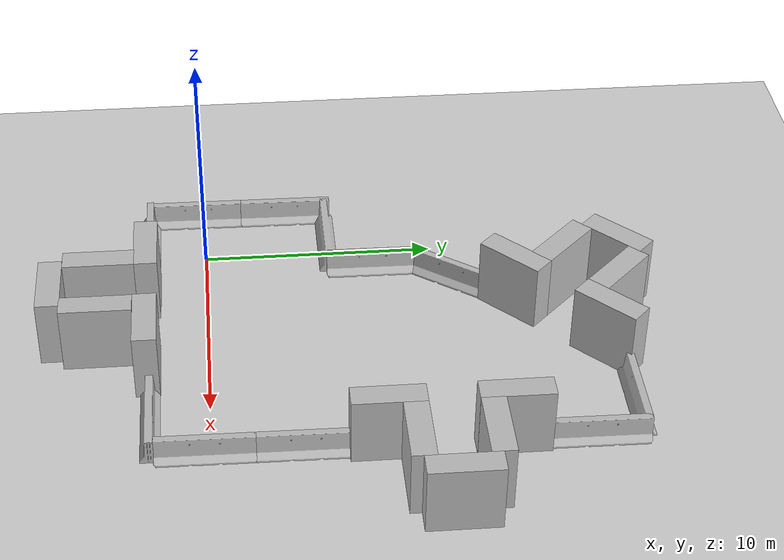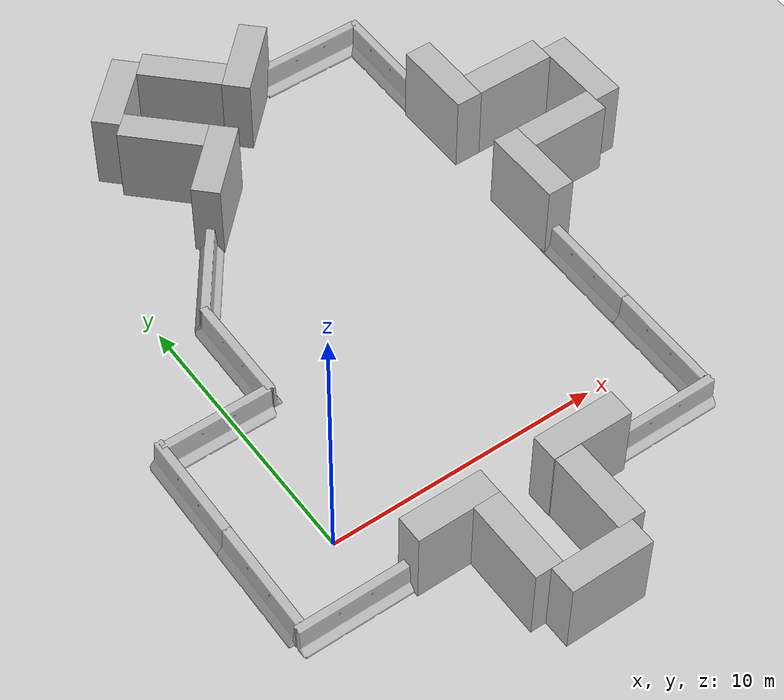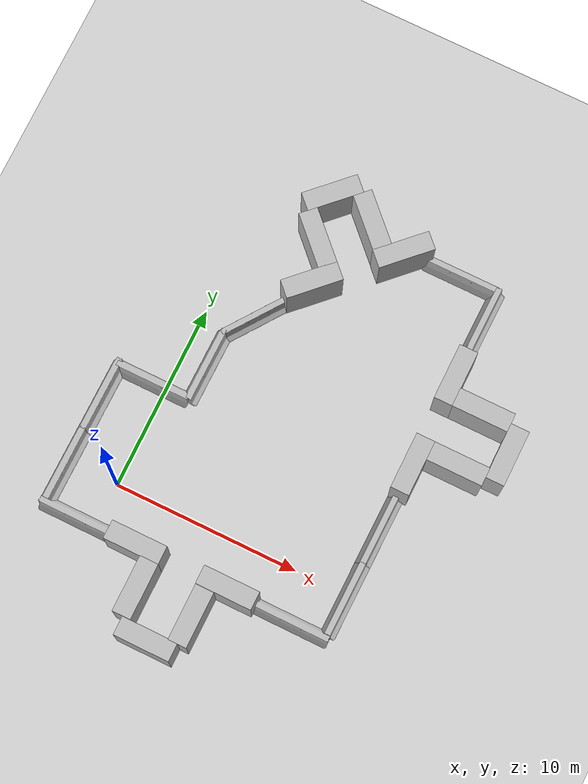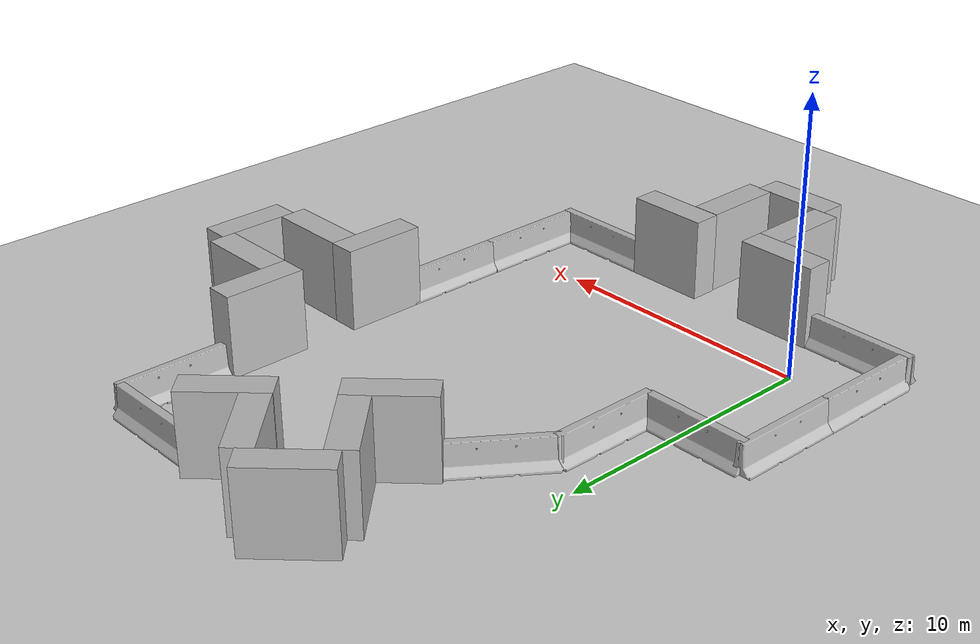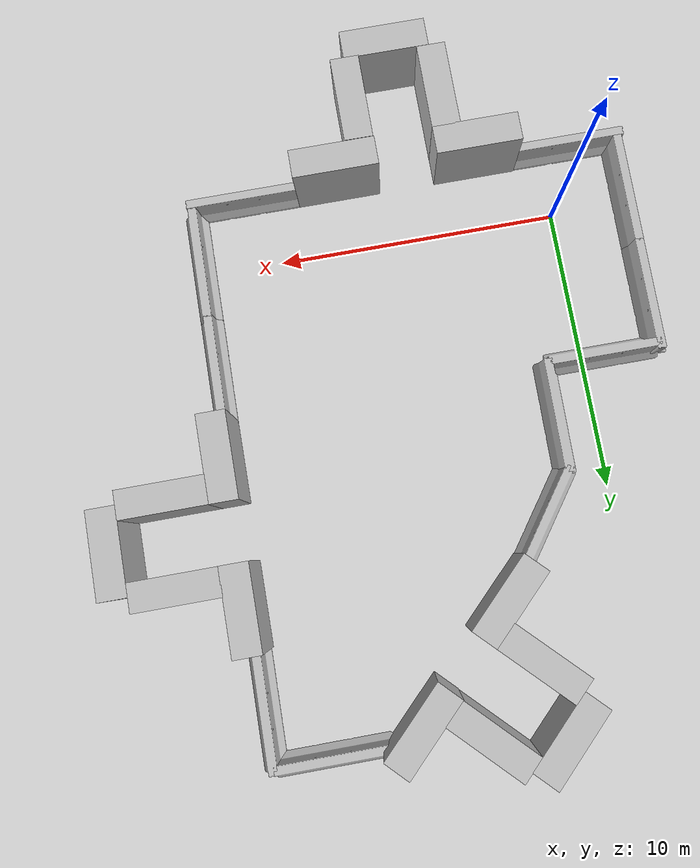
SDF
<sdf version="1.7">
 <world name="default">
  <light name="sun" type="directional">
   <pose>0 0 10 0 -0 0</pose>
   <diffuse>0.8 0.8 0.8 1</diffuse>
   <specular>0.2 0.2 0.2 1</specular>
   <attenuation>
    <range>1000</range>
    <constant>0.9</constant>
    <linear>0.01</linear>
    <quadratic>0.001</quadratic>
   </attenuation>
   <direction>-0.5 0.1 -0.9</direction>
   <spot><inner_angle>0</inner_angle><outer_angle>0</outer_angle><falloff>0</falloff></spot>
  </light>
  <model name="ground_plane">
   <static>1</static>
   <link name="link">
    <collision name="collision">
     <geometry><plane><normal>0 0 1</normal><size>100 100</size></plane></geometry>
     <surface>
      <contact><collide_bitmask>65535</collide_bitmask></contact>
      <friction><ode><mu>100</mu><mu2>50</mu2></ode></friction>
     </surface>
    </collision>
    <visual name="visual">
     <cast_shadows>0</cast_shadows>
     <geometry><plane><normal>0 0 1</normal><size>100 100</size></plane></geometry>
     <material>
      <script><uri>file://media/materials/scripts/gazebo.material</uri><name>Gazebo/Grey</name></script>
     </material>
    </visual>
   </link>
  </model>
  <gravity>0 0 -9.8</gravity>
  <magnetic_field>6e-06 2.3e-05 -4.2e-05</magnetic_field>
  <atmosphere type="adiabatic"/>
  <physics type="ode">
   <max_step_size>0.001</max_step_size>
   <real_time_factor>1</real_time_factor>
   <real_time_update_rate>1000</real_time_update_rate>
  </physics>
  <scene><ambient>0.4 0.4 0.4 1</ambient><background>0.7 0.7 0.7 1</background><shadows>1</shadows></scene>
  <spherical_coordinates>
   <surface_model>EARTH_WGS84</surface_model>
   <latitude_deg>0</latitude_deg>
   <longitude_deg>0</longitude_deg>
   <elevation>0</elevation>
   <heading_deg>0</heading_deg>
  </spherical_coordinates>
  <model name="brick_box_3x1x3">
   <static>1</static>
   <link name="chassis">
    <pose>0 0 1.5 0 -0 0</pose>
    <collision name="collision"><geometry><box><size>3 1 3</size></box></geometry></collision>
    <visual name="visual">
     <geometry><mesh><uri>model://brick_box_3x1x3/meshes/simple_box.dae</uri><scale>3 1 3</scale></mesh></geometry>
     <material>
      <script>
       <uri>model://brick_box_3x1x3/materials/scripts</uri>
       <uri>model://brick_box_3x1x3/materials/textures</uri>
       <name>BrickBox/Diffuse</name>
      </script>
     </material>
    </visual>
   </link>
   <pose>2.50107 -2.51049 0 0 -0 0</pose>
  </model>
  <model name="brick_box_3x1x3_clone">
   <static>1</static>
   <link name="chassis">
    <pose>0 0 1.5 0 -0 0</pose>
    <collision name="collision"><geometry><box><size>3 1 3</size></box></geometry></collision>
    <visual name="visual">
     <geometry><mesh><uri>model://brick_box_3x1x3/meshes/simple_box.dae</uri><scale>3 1 3</scale></mesh></geometry>
     <material>
      <script>
       <uri>model://brick_box_3x1x3/materials/scripts</uri>
       <uri>model://brick_box_3x1x3/materials/textures</uri>
       <name>BrickBox/Diffuse</name>
      </script>
     </material>
    </visual>
   </link>
   <pose>7.52358 -2.5153 0 0 -0 0</pose>
  </model>
  <model name="brick_box_3x1x3_clone_clone">
   <static>1</static>
   <link name="chassis">
    <pose>0 0 1.5 0 -0 0</pose>
    <collision name="collision"><geometry><box><size>3 1 3</size></box></geometry></collision>
    <visual name="visual">
     <geometry><mesh><uri>model://brick_box_3x1x3/meshes/simple_box.dae</uri><scale>3 1 3</scale></mesh></geometry>
     <material>
      <script>
       <uri>model://brick_box_3x1x3/materials/scripts</uri>
       <uri>model://brick_box_3x1x3/materials/textures</uri>
       <name>BrickBox/Diffuse</name>
      </script>
     </material>
    </visual>
   </link>
   <pose>6.55004 -4.52877 0 0 -0 1.57045</pose>
  </model>
  <model name="brick_box_3x1x3_clone_clone_clone">
   <static>1</static>
   <link name="chassis">
    <pose>0 0 1.5 0 -0 0</pose>
    <collision name="collision"><geometry><box><size>3 1 3</size></box></geometry></collision>
    <visual name="visual">
     <geometry><mesh><uri>model://brick_box_3x1x3/meshes/simple_box.dae</uri><scale>3 1 3</scale></mesh></geometry>
     <material>
      <script>
       <uri>model://brick_box_3x1x3/materials/scripts</uri>
       <uri>model://brick_box_3x1x3/materials/textures</uri>
       <name>BrickBox/Diffuse</name>
      </script>
     </material>
    </visual>
   </link>
   <pose>3.50386 -4.48511 0 0 -0 1.57045</pose>
  </model>
  <model name="brick_box_3x1x3_clone_0">
   <static>1</static>
   <link name="chassis">
    <pose>0 0 1.5 0 -0 0</pose>
    <collision name="collision"><geometry><box><size>3 1 3</size></box></geometry></collision>
    <visual name="visual">
     <geometry><mesh><uri>model://brick_box_3x1x3/meshes/simple_box.dae</uri><scale>3 1 3</scale></mesh></geometry>
     <material>
      <script>
       <uri>model://brick_box_3x1x3/materials/scripts</uri>
       <uri>model://brick_box_3x1x3/materials/textures</uri>
       <name>BrickBox/Diffuse</name>
      </script>
     </material>
    </visual>
   </link>
   <pose>5.07076 -6.4907 0 0 -0 0</pose>
  </model>
  <model name="jersey_barrier">
   <static>1</static>
   <link name="link">
    <visual name="visual">
     <geometry><mesh><uri>model://jersey_barrier/meshes/jersey_barrier.dae</uri></mesh></geometry>
    </visual>
    <collision name="upright">
     <pose>0 0 0.5715 0 -0 0</pose>
     <geometry><box><size>4.06542 0.3063 1.143</size></box></geometry>
    </collision>
    <collision name="base">
     <pose>0 0 0.032258 0 -0 0</pose>
     <geometry><box><size>4.06542 0.8107 0.064516</size></box></geometry>
    </collision>
    <collision name="base2">
     <pose>0 0 0.1 0 -0 0</pose>
     <geometry><box><size>4.06542 0.65 0.1</size></box></geometry>
    </collision>
    <collision name="base3">
     <pose>0 0 0.2 0 -0 0</pose>
     <geometry><box><size>4.06542 0.5 0.1</size></box></geometry>
    </collision>
    <collision name="left-angle">
     <pose>0 -0.224 0.2401 0.9 -0 0</pose>
     <geometry><box><size>4.06542 0.5 0.064516</size></box></geometry>
    </collision>
    <collision name="right-angle">
     <pose>0 0.224 0.2401 -0.9 0 0</pose>
     <geometry><box><size>4.06542 0.5 0.064516</size></box></geometry>
    </collision>
   </link>
   <pose>-0.981621 -2.44154 0 0 -0 0</pose>
  </model>
  <model name="jersey_barrier_clone">
   <static>1</static>
   <link name="link">
    <visual name="visual">
     <geometry><mesh><uri>model://jersey_barrier/meshes/jersey_barrier.dae</uri></mesh></geometry>
    </visual>
    <collision name="upright">
     <pose>0 0 0.5715 0 -0 0</pose>
     <geometry><box><size>4.06542 0.3063 1.143</size></box></geometry>
    </collision>
    <collision name="base">
     <pose>0 0 0.032258 0 -0 0</pose>
     <geometry><box><size>4.06542 0.8107 0.064516</size></box></geometry>
    </collision>
    <collision name="base2">
     <pose>0 0 0.1 0 -0 0</pose>
     <geometry><box><size>4.06542 0.65 0.1</size></box></geometry>
    </collision>
    <collision name="base3">
     <pose>0 0 0.2 0 -0 0</pose>
     <geometry><box><size>4.06542 0.5 0.1</size></box></geometry>
    </collision>
    <collision name="left-angle">
     <pose>0 -0.224 0.2401 0.9 -0 0</pose>
     <geometry><box><size>4.06542 0.5 0.064516</size></box></geometry>
    </collision>
    <collision name="right-angle">
     <pose>0 0.224 0.2401 -0.9 0 0</pose>
     <geometry><box><size>4.06542 0.5 0.064516</size></box></geometry>
    </collision>
   </link>
   <pose>10.9697 -2.42292 0 0 -0 0</pose>
  </model>
  <model name="jersey_barrier_clone_0">
   <static>1</static>
   <link name="link">
    <visual name="visual">
     <geometry><mesh><uri>model://jersey_barrier/meshes/jersey_barrier.dae</uri></mesh></geometry>
    </visual>
    <collision name="upright">
     <pose>0 0 0.5715 0 -0 0</pose>
     <geometry><box><size>4.06542 0.3063 1.143</size></box></geometry>
    </collision>
    <collision name="base">
     <pose>0 0 0.032258 0 -0 0</pose>
     <geometry><box><size>4.06542 0.8107 0.064516</size></box></geometry>
    </collision>
    <collision name="base2">
     <pose>0 0 0.1 0 -0 0</pose>
     <geometry><box><size>4.06542 0.65 0.1</size></box></geometry>
    </collision>
    <collision name="base3">
     <pose>0 0 0.2 0 -0 0</pose>
     <geometry><box><size>4.06542 0.5 0.1</size></box></geometry>
    </collision>
    <collision name="left-angle">
     <pose>0 -0.224 0.2401 0.9 -0 0</pose>
     <geometry><box><size>4.06542 0.5 0.064516</size></box></geometry>
    </collision>
    <collision name="right-angle">
     <pose>0 0.224 0.2401 -0.9 0 0</pose>
     <geometry><box><size>4.06542 0.5 0.064516</size></box></geometry>
    </collision>
   </link>
   <pose>12.833 -0.241404 0 0 -0 1.56076</pose>
  </model>
  <model name="jersey_barrier_clone_0_clone">
   <static>1</static>
   <link name="link">
    <visual name="visual">
     <geometry><mesh><uri>model://jersey_barrier/meshes/jersey_barrier.dae</uri></mesh></geometry>
    </visual>
    <collision name="upright">
     <pose>0 0 0.5715 0 -0 0</pose>
     <geometry><box><size>4.06542 0.3063 1.143</size></box></geometry>
    </collision>
    <collision name="base">
     <pose>0 0 0.032258 0 -0 0</pose>
     <geometry><box><size>4.06542 0.8107 0.064516</size></box></geometry>
    </collision>
    <collision name="base2">
     <pose>0 0 0.1 0 -0 0</pose>
     <geometry><box><size>4.06542 0.65 0.1</size></box></geometry>
    </collision>
    <collision name="base3">
     <pose>0 0 0.2 0 -0 0</pose>
     <geometry><box><size>4.06542 0.5 0.1</size></box></geometry>
    </collision>
    <collision name="left-angle">
     <pose>0 -0.224 0.2401 0.9 -0 0</pose>
     <geometry><box><size>4.06542 0.5 0.064516</size></box></geometry>
    </collision>
    <collision name="right-angle">
     <pose>0 0.224 0.2401 -0.9 0 0</pose>
     <geometry><box><size>4.06542 0.5 0.064516</size></box></geometry>
    </collision>
   </link>
   <pose>12.9806 15.4126 0 0 -0 1.56076</pose>
  </model>
  <model name="jersey_barrier_clone_0_clone_0">
   <static>1</static>
   <link name="link">
    <visual name="visual">
     <geometry><mesh><uri>model://jersey_barrier/meshes/jersey_barrier.dae</uri></mesh></geometry>
    </visual>
    <collision name="upright">
     <pose>0 0 0.5715 0 -0 0</pose>
     <geometry><box><size>4.06542 0.3063 1.143</size></box></geometry>
    </collision>
    <collision name="base">
     <pose>0 0 0.032258 0 -0 0</pose>
     <geometry><box><size>4.06542 0.8107 0.064516</size></box></geometry>
    </collision>
    <collision name="base2">
     <pose>0 0 0.1 0 -0 0</pose>
     <geometry><box><size>4.06542 0.65 0.1</size></box></geometry>
    </collision>
    <collision name="base3">
     <pose>0 0 0.2 0 -0 0</pose>
     <geometry><box><size>4.06542 0.5 0.1</size></box></geometry>
    </collision>
    <collision name="left-angle">
     <pose>0 -0.224 0.2401 0.9 -0 0</pose>
     <geometry><box><size>4.06542 0.5 0.064516</size></box></geometry>
    </collision>
    <collision name="right-angle">
     <pose>0 0.224 0.2401 -0.9 0 0</pose>
     <geometry><box><size>4.06542 0.5 0.064516</size></box></geometry>
    </collision>
   </link>
   <pose>-2.74216 -0.283668 0 0 -0 1.56076</pose>
  </model>
  <model name="jersey_barrier_clone_0_clone_1">
   <static>1</static>
   <link name="link">
    <visual name="visual">
     <geometry><mesh><uri>model://jersey_barrier/meshes/jersey_barrier.dae</uri></mesh></geometry>
    </visual>
    <collision name="upright">
     <pose>0 0 0.5715 0 -0 0</pose>
     <geometry><box><size>4.06542 0.3063 1.143</size></box></geometry>
    </collision>
    <collision name="base">
     <pose>0 0 0.032258 0 -0 0</pose>
     <geometry><box><size>4.06542 0.8107 0.064516</size></box></geometry>
    </collision>
    <collision name="base2">
     <pose>0 0 0.1 0 -0 0</pose>
     <geometry><box><size>4.06542 0.65 0.1</size></box></geometry>
    </collision>
    <collision name="base3">
     <pose>0 0 0.2 0 -0 0</pose>
     <geometry><box><size>4.06542 0.5 0.1</size></box></geometry>
    </collision>
    <collision name="left-angle">
     <pose>0 -0.224 0.2401 0.9 -0 0</pose>
     <geometry><box><size>4.06542 0.5 0.064516</size></box></geometry>
    </collision>
    <collision name="right-angle">
     <pose>0 0.224 0.2401 -0.9 0 0</pose>
     <geometry><box><size>4.06542 0.5 0.064516</size></box></geometry>
    </collision>
   </link>
   <pose>-2.69711 3.65751 0 0 -0 1.56076</pose>
  </model>
  <model name="jersey_barrier_clone_clone">
   <static>1</static>
   <link name="link">
    <visual name="visual">
     <geometry><mesh><uri>model://jersey_barrier/meshes/jersey_barrier.dae</uri></mesh></geometry>
    </visual>
    <collision name="upright">
     <pose>0 0 0.5715 0 -0 0</pose>
     <geometry><box><size>4.06542 0.3063 1.143</size></box></geometry>
    </collision>
    <collision name="base">
     <pose>0 0 0.032258 0 -0 0</pose>
     <geometry><box><size>4.06542 0.8107 0.064516</size></box></geometry>
    </collision>
    <collision name="base2">
     <pose>0 0 0.1 0 -0 0</pose>
     <geometry><box><size>4.06542 0.65 0.1</size></box></geometry>
    </collision>
    <collision name="base3">
     <pose>0 0 0.2 0 -0 0</pose>
     <geometry><box><size>4.06542 0.5 0.1</size></box></geometry>
    </collision>
    <collision name="left-angle">
     <pose>0 -0.224 0.2401 0.9 -0 0</pose>
     <geometry><box><size>4.06542 0.5 0.064516</size></box></geometry>
    </collision>
    <collision name="right-angle">
     <pose>0 0.224 0.2401 -0.9 0 0</pose>
     <geometry><box><size>4.06542 0.5 0.064516</size></box></geometry>
    </collision>
   </link>
   <pose>10.9669 17.2955 0 0 -0 0</pose>
  </model>
  <model name="brick_box_3x1x3_clone_clone_clone_0">
   <static>1</static>
   <link name="chassis">
    <pose>0 0 1.5 0 -0 0</pose>
    <collision name="collision"><geometry><box><size>3 1 3</size></box></geometry></collision>
    <visual name="visual">
     <geometry><mesh><uri>model://brick_box_3x1x3/meshes/simple_box.dae</uri><scale>3 1 3</scale></mesh></geometry>
     <material>
      <script>
       <uri>model://brick_box_3x1x3/materials/scripts</uri>
       <uri>model://brick_box_3x1x3/materials/textures</uri>
       <name>BrickBox/Diffuse</name>
      </script>
     </material>
    </visual>
   </link>
   <pose>12.9819 6.93008 0 0 -0 1.57045</pose>
  </model>
  <model name="brick_box_3x1x3_clone_clone_clone_0_clone">
   <static>1</static>
   <link name="chassis">
    <pose>0 0 1.5 0 -0 0</pose>
    <collision name="collision"><geometry><box><size>3 1 3</size></box></geometry></collision>
    <visual name="visual">
     <geometry><mesh><uri>model://brick_box_3x1x3/meshes/simple_box.dae</uri><scale>3 1 3</scale></mesh></geometry>
     <material>
      <script>
       <uri>model://brick_box_3x1x3/materials/scripts</uri>
       <uri>model://brick_box_3x1x3/materials/textures</uri>
       <name>BrickBox/Diffuse</name>
      </script>
     </material>
    </visual>
   </link>
   <pose>12.9822 11.9279 0 0 -0 1.57045</pose>
  </model>
  <model name="brick_box_3x1x3_clone_clone_0">
   <static>1</static>
   <link name="chassis">
    <pose>0 0 1.5 0 -0 0</pose>
    <collision name="collision"><geometry><box><size>3 1 3</size></box></geometry></collision>
    <visual name="visual">
     <geometry><mesh><uri>model://brick_box_3x1x3/meshes/simple_box.dae</uri><scale>3 1 3</scale></mesh></geometry>
     <material>
      <script>
       <uri>model://brick_box_3x1x3/materials/scripts</uri>
       <uri>model://brick_box_3x1x3/materials/textures</uri>
       <name>BrickBox/Diffuse</name>
      </script>
     </material>
    </visual>
   </link>
   <pose>14.9708 7.9293 0 0 -0 0</pose>
  </model>
  <model name="brick_box_3x1x3_clone_clone_clone_0_clone_0">
   <static>1</static>
   <link name="chassis">
    <pose>0 0 1.5 0 -0 0</pose>
    <collision name="collision"><geometry><box><size>3 1 3</size></box></geometry></collision>
    <visual name="visual">
     <geometry><mesh><uri>model://brick_box_3x1x3/meshes/simple_box.dae</uri><scale>3 1 3</scale></mesh></geometry>
     <material>
      <script>
       <uri>model://brick_box_3x1x3/materials/scripts</uri>
       <uri>model://brick_box_3x1x3/materials/textures</uri>
       <name>BrickBox/Diffuse</name>
      </script>
     </material>
    </visual>
   </link>
   <pose>16.9567 9.40498 0 0 -0 1.57045</pose>
  </model>
  <model name="brick_box_3x1x3_clone_clone_0_clone">
   <static>1</static>
   <link name="chassis">
    <pose>0 0 1.5 0 -0 0</pose>
    <collision name="collision"><geometry><box><size>3 1 3</size></box></geometry></collision>
    <visual name="visual">
     <geometry><mesh><uri>model://brick_box_3x1x3/meshes/simple_box.dae</uri><scale>3 1 3</scale></mesh></geometry>
     <material>
      <script>
       <uri>model://brick_box_3x1x3/materials/scripts</uri>
       <uri>model://brick_box_3x1x3/materials/textures</uri>
       <name>BrickBox/Diffuse</name>
      </script>
     </material>
    </visual>
   </link>
   <pose>14.96 10.9313 0 0 -0 0</pose>
  </model>
  <model name="jersey_barrier_clone_0_clone_clone">
   <static>1</static>
   <link name="link">
    <visual name="visual">
     <geometry><mesh><uri>model://jersey_barrier/meshes/jersey_barrier.dae</uri></mesh></geometry>
    </visual>
    <collision name="upright">
     <pose>0 0 0.5715 0 -0 0</pose>
     <geometry><box><size>4.06542 0.3063 1.143</size></box></geometry>
    </collision>
    <collision name="base">
     <pose>0 0 0.032258 0 -0 0</pose>
     <geometry><box><size>4.06542 0.8107 0.064516</size></box></geometry>
    </collision>
    <collision name="base2">
     <pose>0 0 0.1 0 -0 0</pose>
     <geometry><box><size>4.06542 0.65 0.1</size></box></geometry>
    </collision>
    <collision name="base3">
     <pose>0 0 0.2 0 -0 0</pose>
     <geometry><box><size>4.06542 0.5 0.1</size></box></geometry>
    </collision>
    <collision name="left-angle">
     <pose>0 -0.224 0.2401 0.9 -0 0</pose>
     <geometry><box><size>4.06542 0.5 0.064516</size></box></geometry>
    </collision>
    <collision name="right-angle">
     <pose>0 0.224 0.2401 -0.9 0 0</pose>
     <geometry><box><size>4.06542 0.5 0.064516</size></box></geometry>
    </collision>
   </link>
   <pose>12.8687 3.71949 0 0 -0 1.56076</pose>
  </model>
  <model name="jersey_barrier_clone_0_clone_1_clone_1_clone_0">
   <static>1</static>
   <link name="link">
    <visual name="visual">
     <geometry><mesh><uri>model://jersey_barrier/meshes/jersey_barrier.dae</uri></mesh></geometry>
    </visual>
    <collision name="upright">
     <pose>0 0 0.5715 0 -0 0</pose>
     <geometry><box><size>4.06542 0.3063 1.143</size></box></geometry>
    </collision>
    <collision name="base">
     <pose>0 0 0.032258 0 -0 0</pose>
     <geometry><box><size>4.06542 0.8107 0.064516</size></box></geometry>
    </collision>
    <collision name="base2">
     <pose>0 0 0.1 0 -0 0</pose>
     <geometry><box><size>4.06542 0.65 0.1</size></box></geometry>
    </collision>
    <collision name="base3">
     <pose>0 0 0.2 0 -0 0</pose>
     <geometry><box><size>4.06542 0.5 0.1</size></box></geometry>
    </collision>
    <collision name="left-angle">
     <pose>0 -0.224 0.2401 0.9 -0 0</pose>
     <geometry><box><size>4.06542 0.5 0.064516</size></box></geometry>
    </collision>
    <collision name="right-angle">
     <pose>0 0.224 0.2401 -0.9 0 0</pose>
     <geometry><box><size>4.06542 0.5 0.064516</size></box></geometry>
    </collision>
   </link>
   <pose>2.50483 10.7895 0 0 -0 0.948871</pose>
  </model>
  <model name="jersey_barrier_clone_0_clone_1_clone_1_clone_1">
   <static>1</static>
   <link name="link">
    <visual name="visual">
     <geometry><mesh><uri>model://jersey_barrier/meshes/jersey_barrier.dae</uri></mesh></geometry>
    </visual>
    <collision name="upright">
     <pose>0 0 0.5715 0 -0 0</pose>
     <geometry><box><size>4.06542 0.3063 1.143</size></box></geometry>
    </collision>
    <collision name="base">
     <pose>0 0 0.032258 0 -0 0</pose>
     <geometry><box><size>4.06542 0.8107 0.064516</size></box></geometry>
    </collision>
    <collision name="base2">
     <pose>0 0 0.1 0 -0 0</pose>
     <geometry><box><size>4.06542 0.65 0.1</size></box></geometry>
    </collision>
    <collision name="base3">
     <pose>0 0 0.2 0 -0 0</pose>
     <geometry><box><size>4.06542 0.5 0.1</size></box></geometry>
    </collision>
    <collision name="left-angle">
     <pose>0 -0.224 0.2401 0.9 -0 0</pose>
     <geometry><box><size>4.06542 0.5 0.064516</size></box></geometry>
    </collision>
    <collision name="right-angle">
     <pose>0 0.224 0.2401 -0.9 0 0</pose>
     <geometry><box><size>4.06542 0.5 0.064516</size></box></geometry>
    </collision>
   </link>
   <pose>1.37085 7.35186 0 0 -0 1.56076</pose>
  </model>
  <model name="jersey_barrier_clone_clone_1_clone_0">
   <static>1</static>
   <link name="link">
    <visual name="visual">
     <geometry><mesh><uri>model://jersey_barrier/meshes/jersey_barrier.dae</uri></mesh></geometry>
    </visual>
    <collision name="upright">
     <pose>0 0 0.5715 0 -0 0</pose>
     <geometry><box><size>4.06542 0.3063 1.143</size></box></geometry>
    </collision>
    <collision name="base">
     <pose>0 0 0.032258 0 -0 0</pose>
     <geometry><box><size>4.06542 0.8107 0.064516</size></box></geometry>
    </collision>
    <collision name="base2">
     <pose>0 0 0.1 0 -0 0</pose>
     <geometry><box><size>4.06542 0.65 0.1</size></box></geometry>
    </collision>
    <collision name="base3">
     <pose>0 0 0.2 0 -0 0</pose>
     <geometry><box><size>4.06542 0.5 0.1</size></box></geometry>
    </collision>
    <collision name="left-angle">
     <pose>0 -0.224 0.2401 0.9 -0 0</pose>
     <geometry><box><size>4.06542 0.5 0.064516</size></box></geometry>
    </collision>
    <collision name="right-angle">
     <pose>0 0.224 0.2401 -0.9 0 0</pose>
     <geometry><box><size>4.06542 0.5 0.064516</size></box></geometry>
    </collision>
   </link>
   <pose>-0.701367 5.42809 0 0 -0 0</pose>
  </model>
  <model name="brick_box_3x1x3_clone_1">
   <static>1</static>
   <link name="chassis">
    <pose>0 0 1.5 0 -0 0</pose>
    <collision name="collision"><geometry><box><size>3 1 3</size></box></geometry></collision>
    <visual name="visual">
     <geometry><mesh><uri>model://brick_box_3x1x3/meshes/simple_box.dae</uri><scale>3 1 3</scale></mesh></geometry>
     <material>
      <script>
       <uri>model://brick_box_3x1x3/materials/scripts</uri>
       <uri>model://brick_box_3x1x3/materials/textures</uri>
       <name>BrickBox/Diffuse</name>
      </script>
     </material>
    </visual>
   </link>
   <pose>7.8939 16.6137 0 0 -0 0.785398</pose>
  </model>
  <model name="brick_box_3x1x3_clone_1_clone">
   <static>1</static>
   <link name="chassis">
    <pose>0 0 1.5 0 -0 0</pose>
    <collision name="collision"><geometry><box><size>3 1 3</size></box></geometry></collision>
    <visual name="visual">
     <geometry><mesh><uri>model://brick_box_3x1x3/meshes/simple_box.dae</uri><scale>3 1 3</scale></mesh></geometry>
     <material>
      <script>
       <uri>model://brick_box_3x1x3/materials/scripts</uri>
       <uri>model://brick_box_3x1x3/materials/textures</uri>
       <name>BrickBox/Diffuse</name>
      </script>
     </material>
    </visual>
   </link>
   <pose>4.43411 13.1689 0 0 -0 0.785398</pose>
  </model>
  <model name="brick_box_3x1x3_clone_1_clone_clone">
   <static>1</static>
   <link name="chassis">
    <pose>0 0 1.5 0 -0 0</pose>
    <collision name="collision"><geometry><box><size>3 1 3</size></box></geometry></collision>
    <visual name="visual">
     <geometry><mesh><uri>model://brick_box_3x1x3/meshes/simple_box.dae</uri><scale>3 1 3</scale></mesh></geometry>
     <material>
      <script>
       <uri>model://brick_box_3x1x3/materials/scripts</uri>
       <uri>model://brick_box_3x1x3/materials/textures</uri>
       <name>BrickBox/Diffuse</name>
      </script>
     </material>
    </visual>
   </link>
   <pose>5.79261 17.3223 0 0 0 -0.785398</pose>
  </model>
  <model name="brick_box_3x1x3_clone_1_clone_0">
   <static>1</static>
   <link name="chassis">
    <pose>0 0 1.5 0 -0 0</pose>
    <collision name="collision"><geometry><box><size>3 1 3</size></box></geometry></collision>
    <visual name="visual">
     <geometry><mesh><uri>model://brick_box_3x1x3/meshes/simple_box.dae</uri><scale>3 1 3</scale></mesh></geometry>
     <material>
      <script>
       <uri>model://brick_box_3x1x3/materials/scripts</uri>
       <uri>model://brick_box_3x1x3/materials/textures</uri>
       <name>BrickBox/Diffuse</name>
      </script>
     </material>
    </visual>
   </link>
   <pose>3.38165 17.7224 0 0 -0 0.785398</pose>
  </model>
  <model name="brick_box_3x1x3_clone_1_clone_clone_clone">
   <static>1</static>
   <link name="chassis">
    <pose>0 0 1.5 0 -0 0</pose>
    <collision name="collision"><geometry><box><size>3 1 3</size></box></geometry></collision>
    <visual name="visual">
     <geometry><mesh><uri>model://brick_box_3x1x3/meshes/simple_box.dae</uri><scale>3 1 3</scale></mesh></geometry>
     <material>
      <script>
       <uri>model://brick_box_3x1x3/materials/scripts</uri>
       <uri>model://brick_box_3x1x3/materials/textures</uri>
       <name>BrickBox/Diffuse</name>
      </script>
     </material>
    </visual>
   </link>
   <pose>3.7442 15.2716 0 0 0 -0.785398</pose>
  </model>
 </world>
</sdf>
